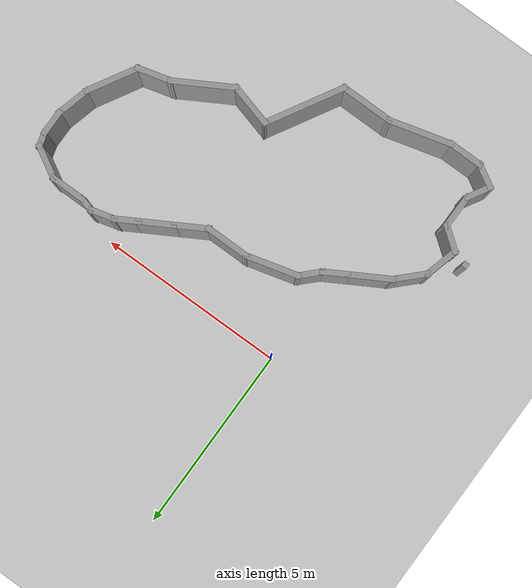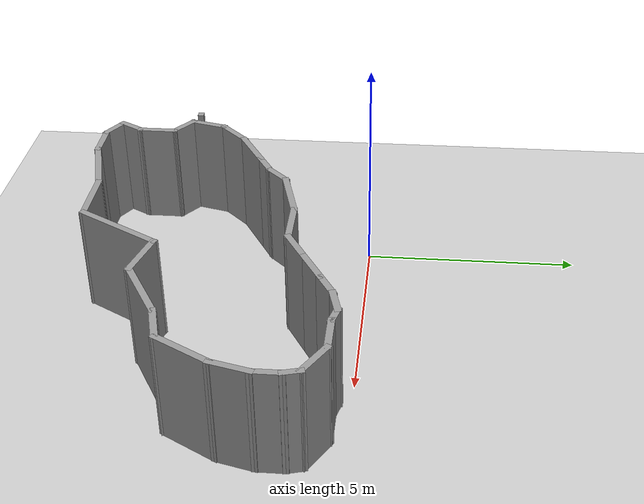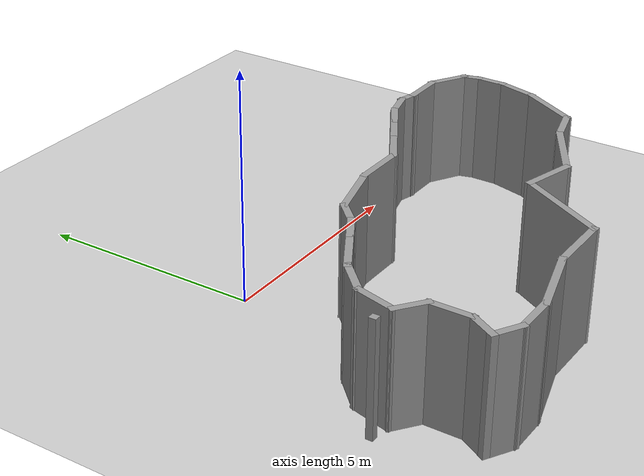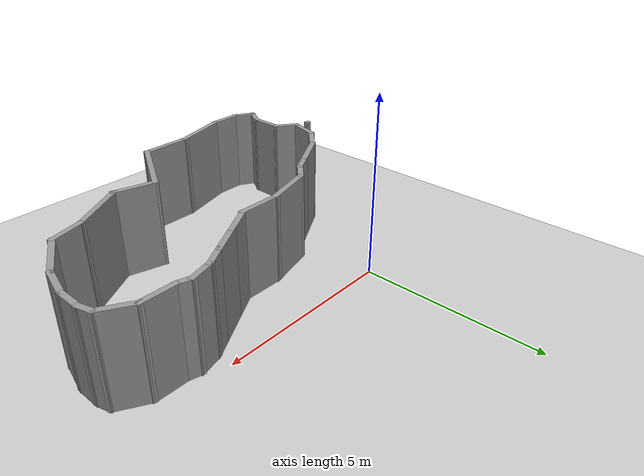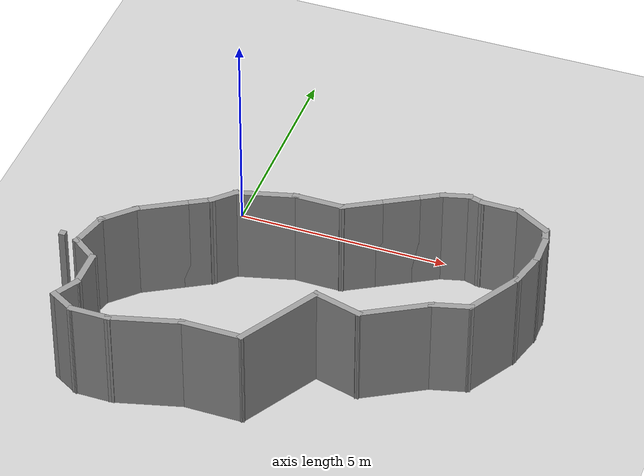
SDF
<sdf version="1.7">
 <world name="default">
  <model name="ground_plane">
   <static>1</static>
   <link name="link">
    <collision name="collision">
     <geometry><plane><normal>0 0 1</normal><size>100 100</size></plane></geometry>
     <surface>
      <contact><collide_bitmask>65535</collide_bitmask></contact>
      <friction><ode><mu>100</mu><mu2>50</mu2></ode></friction>
     </surface>
    </collision>
    <visual name="visual">
     <cast_shadows>0</cast_shadows>
     <geometry><plane><normal>0 0 1</normal><size>100 100</size></plane></geometry>
     <material>
      <script><uri>file://media/materials/scripts/gazebo.material</uri><name>Gazebo/Grey</name></script>
     </material>
    </visual>
   </link>
  </model>
  <model name="inside_map2">
   <pose>2.56691 -3.40179 0 0 -0 0</pose>
   <link name="Wall_116">
    <collision name="Wall_116_Collision">
     <geometry><box><size>0.15 0.15 2.5</size></box></geometry>
     <pose>0 0 1.25 0 -0 0</pose>
    </collision>
    <visual name="Wall_116_Visual">
     <pose>0 0 1.25 0 -0 0</pose>
     <geometry><box><size>0.15 0.15 2.5</size></box></geometry>
     <material>
      <script><uri>file://media/materials/scripts/gazebo.material</uri><name>Gazebo/Grey</name></script>
      <ambient>1 1 1 1</ambient>
     </material>
     <meta><layer>0</layer></meta>
    </visual>
    <pose>-5.0604 -1.1193 0 0 -0 0</pose>
   </link>
   <link name="Wall_118">
    <collision name="Wall_118_Collision">
     <geometry><box><size>1 0.15 2.5</size></box></geometry>
     <pose>0 0 1.25 0 -0 0</pose>
    </collision>
    <visual name="Wall_118_Visual">
     <pose>0 0 1.25 0 -0 0</pose>
     <geometry><box><size>1 0.15 2.5</size></box></geometry>
     <material>
      <script><uri>file://media/materials/scripts/gazebo.material</uri><name>Gazebo/Grey</name></script>
      <ambient>1 1 1 1</ambient>
     </material>
     <meta><layer>0</layer></meta>
    </visual>
    <pose>-4.5542 -0.827963 0 0 -0 1.309</pose>
   </link>
   <link name="Wall_119">
    <collision name="Wall_119_Collision">
     <geometry><box><size>1 0.15 2.5</size></box></geometry>
     <pose>0 0 1.25 0 -0 0</pose>
    </collision>
    <visual name="Wall_119_Visual">
     <pose>0 0 1.25 0 -0 0</pose>
     <geometry><box><size>1 0.15 2.5</size></box></geometry>
     <material>
      <script><uri>file://media/materials/scripts/gazebo.material</uri><name>Gazebo/Grey</name></script>
      <ambient>1 1 1 1</ambient>
     </material>
     <meta><layer>0</layer></meta>
    </visual>
    <pose>-4.14368 -0.116925 0 0 -0 0.785398</pose>
   </link>
   <link name="Wall_120">
    <collision name="Wall_120_Collision">
     <geometry><box><size>1.25 0.15 2.5</size></box></geometry>
     <pose>0 0 1.25 0 -0 0</pose>
    </collision>
    <visual name="Wall_120_Visual">
     <pose>0 0 1.25 0 -0 0</pose>
     <geometry><box><size>1.25 0.15 2.5</size></box></geometry>
     <material>
      <script><uri>file://media/materials/scripts/gazebo.material</uri><name>Gazebo/Grey</name></script>
      <ambient>1 1 1 1</ambient>
     </material>
     <meta><layer>0</layer></meta>
    </visual>
    <pose>-3.36684 0.458596 0 0 -0 0.523599</pose>
   </link>
   <link name="Wall_121">
    <collision name="Wall_121_Collision">
     <geometry><box><size>0.75 0.15 2.5</size></box></geometry>
     <pose>0 0 1.25 0 -0 0</pose>
    </collision>
    <visual name="Wall_121_Visual">
     <pose>0 0 1.25 0 -0 0</pose>
     <geometry><box><size>0.75 0.15 2.5</size></box></geometry>
     <material>
      <script><uri>file://media/materials/scripts/gazebo.material</uri><name>Gazebo/Grey</name></script>
      <ambient>1 1 1 1</ambient>
     </material>
     <meta><layer>0</layer></meta>
    </visual>
    <pose>-2.63072 0.883596 0 0 -0 0.523599</pose>
   </link>
   <link name="Wall_122">
    <collision name="Wall_122_Collision">
     <geometry><box><size>0.75 0.15 2.5</size></box></geometry>
     <pose>0 0 1.25 0 -0 0</pose>
    </collision>
    <visual name="Wall_122_Visual">
     <pose>0 0 1.25 0 -0 0</pose>
     <geometry><box><size>0.75 0.15 2.5</size></box></geometry>
     <material>
      <script><uri>file://media/materials/scripts/gazebo.material</uri><name>Gazebo/Grey</name></script>
      <ambient>1 1 1 1</ambient>
     </material>
     <meta><layer>0</layer></meta>
    </visual>
    <pose>-2.15878 1.24573 0 0 -0 0.785398</pose>
   </link>
   <link name="Wall_123">
    <collision name="Wall_123_Collision">
     <geometry><box><size>1.5 0.15 2.5</size></box></geometry>
     <pose>0 0 1.25 0 -0 0</pose>
    </collision>
    <visual name="Wall_123_Visual">
     <pose>0 0 1.25 0 -0 0</pose>
     <geometry><box><size>1.5 0.15 2.5</size></box></geometry>
     <material>
      <script><uri>file://media/materials/scripts/gazebo.material</uri><name>Gazebo/Grey</name></script>
      <ambient>1 1 1 1</ambient>
     </material>
     <meta><layer>0</layer></meta>
    </visual>
    <pose>-1.29465 1.63256 0 0 -0 0.261799</pose>
   </link>
   <link name="Wall_124">
    <collision name="Wall_124_Collision">
     <geometry><box><size>1.25 0.15 2.5</size></box></geometry>
     <pose>0 0 1.25 0 -0 0</pose>
    </collision>
    <visual name="Wall_124_Visual">
     <pose>0 0 1.25 0 -0 0</pose>
     <geometry><box><size>1.25 0.15 2.5</size></box></geometry>
     <material>
      <script><uri>file://media/materials/scripts/gazebo.material</uri><name>Gazebo/Grey</name></script>
      <ambient>1 1 1 1</ambient>
     </material>
     <meta><layer>0</layer></meta>
    </visual>
    <pose>-0.092651 1.80727 0 0 -0 0</pose>
   </link>
   <link name="Wall_125">
    <collision name="Wall_125_Collision">
     <geometry><box><size>1 0.15 2.5</size></box></geometry>
     <pose>0 0 1.25 0 -0 0</pose>
    </collision>
    <visual name="Wall_125_Visual">
     <pose>0 0 1.25 0 -0 0</pose>
     <geometry><box><size>1 0.15 2.5</size></box></geometry>
     <material>
      <script><uri>file://media/materials/scripts/gazebo.material</uri><name>Gazebo/Grey</name></script>
      <ambient>1 1 1 1</ambient>
     </material>
     <meta><layer>0</layer></meta>
    </visual>
    <pose>0.82541 2.01977 0 0 -0 0.523599</pose>
   </link>
   <link name="Wall_126">
    <collision name="Wall_126_Collision">
     <geometry><box><size>1 0.15 2.5</size></box></geometry>
     <pose>0 0 1.25 0 -0 0</pose>
    </collision>
    <visual name="Wall_126_Visual">
     <pose>0 0 1.25 0 -0 0</pose>
     <geometry><box><size>1 0.15 2.5</size></box></geometry>
     <material>
      <script><uri>file://media/materials/scripts/gazebo.material</uri><name>Gazebo/Grey</name></script>
      <ambient>1 1 1 1</ambient>
     </material>
     <meta><layer>0</layer></meta>
    </visual>
    <pose>1.56153 2.44477 0 0 -0 0.523599</pose>
   </link>
   <link name="Wall_127">
    <collision name="Wall_127_Collision">
     <geometry><box><size>0.75 0.15 2.5</size></box></geometry>
     <pose>0 0 1.25 0 -0 0</pose>
    </collision>
    <visual name="Wall_127_Visual">
     <pose>0 0 1.25 0 -0 0</pose>
     <geometry><box><size>0.75 0.15 2.5</size></box></geometry>
     <material>
      <script><uri>file://media/materials/scripts/gazebo.material</uri><name>Gazebo/Grey</name></script>
      <ambient>1 1 1 1</ambient>
     </material>
     <meta><layer>0</layer></meta>
    </visual>
    <pose>2.1894 2.80727 0 0 -0 0.523599</pose>
   </link>
   <link name="Wall_128">
    <collision name="Wall_128_Collision">
     <geometry><box><size>0.75 0.15 2.5</size></box></geometry>
     <pose>0 0 1.25 0 -0 0</pose>
    </collision>
    <visual name="Wall_128_Visual">
     <pose>0 0 1.25 0 -0 0</pose>
     <geometry><box><size>0.75 0.15 2.5</size></box></geometry>
     <material>
      <script><uri>file://media/materials/scripts/gazebo.material</uri><name>Gazebo/Grey</name></script>
      <ambient>1 1 1 1</ambient>
     </material>
     <meta><layer>0</layer></meta>
    </visual>
    <pose>2.73899 3.03491 0 0 -0 0.261799</pose>
   </link>
   <link name="Wall_129">
    <collision name="Wall_129_Collision">
     <geometry><box><size>0.5 0.15 2.5</size></box></geometry>
     <pose>0 0 1.25 0 -0 0</pose>
    </collision>
    <visual name="Wall_129_Visual">
     <pose>0 0 1.25 0 -0 0</pose>
     <geometry><box><size>0.5 0.15 2.5</size></box></geometry>
     <material>
      <script><uri>file://media/materials/scripts/gazebo.material</uri><name>Gazebo/Grey</name></script>
      <ambient>1 1 1 1</ambient>
     </material>
     <meta><layer>0</layer></meta>
    </visual>
    <pose>3.1978 3.06726 0 0 -0 -0.261799</pose>
   </link>
   <link name="Wall_130">
    <collision name="Wall_130_Collision">
     <geometry><box><size>1 0.15 2.5</size></box></geometry>
     <pose>0 0 1.25 0 -0 0</pose>
    </collision>
    <visual name="Wall_130_Visual">
     <pose>0 0 1.25 0 -0 0</pose>
     <geometry><box><size>1 0.15 2.5</size></box></geometry>
     <material>
      <script><uri>file://media/materials/scripts/gazebo.material</uri><name>Gazebo/Grey</name></script>
      <ambient>1 1 1 1</ambient>
     </material>
     <meta><layer>0</layer></meta>
    </visual>
    <pose>3.79184 3.02197 0 0 -0 0</pose>
   </link>
   <link name="Wall_131">
    <collision name="Wall_131_Collision">
     <geometry><box><size>1 0.15 2.5</size></box></geometry>
     <pose>0 0 1.25 0 -0 0</pose>
    </collision>
    <visual name="Wall_131_Visual">
     <pose>0 0 1.25 0 -0 0</pose>
     <geometry><box><size>1 0.15 2.5</size></box></geometry>
     <material>
      <script><uri>file://media/materials/scripts/gazebo.material</uri><name>Gazebo/Grey</name></script>
      <ambient>1 1 1 1</ambient>
     </material>
     <meta><layer>0</layer></meta>
    </visual>
    <pose>4.5849 2.80947 0 0 -0 -0.523599</pose>
   </link>
   <link name="Wall_132">
    <collision name="Wall_132_Collision">
     <geometry><box><size>0.5 0.15 2.5</size></box></geometry>
     <pose>0 0 1.25 0 -0 0</pose>
    </collision>
    <visual name="Wall_132_Visual">
     <pose>0 0 1.25 0 -0 0</pose>
     <geometry><box><size>0.5 0.15 2.5</size></box></geometry>
     <material>
      <script><uri>file://media/materials/scripts/gazebo.material</uri><name>Gazebo/Grey</name></script>
      <ambient>1 1 1 1</ambient>
     </material>
     <meta><layer>0</layer></meta>
    </visual>
    <pose>4.99825 2.42793 0 0 -0 -1.309</pose>
   </link>
   <link name="Wall_133">
    <collision name="Wall_133_Collision">
     <geometry><box><size>0.75 0.15 2.5</size></box></geometry>
     <pose>0 0 1.25 0 -0 0</pose>
    </collision>
    <visual name="Wall_133_Visual">
     <pose>0 0 1.25 0 -0 0</pose>
     <geometry><box><size>0.75 0.15 2.5</size></box></geometry>
     <material>
      <script><uri>file://media/materials/scripts/gazebo.material</uri><name>Gazebo/Grey</name></script>
      <ambient>1 1 1 1</ambient>
     </material>
     <meta><layer>0</layer></meta>
    </visual>
    <pose>5.04354 1.9589 0 0 -0 -1.5708</pose>
   </link>
   <link name="Wall_134">
    <collision name="Wall_134_Collision">
     <geometry><box><size>1 0.15 2.5</size></box></geometry>
     <pose>0 0 1.25 0 -0 0</pose>
    </collision>
    <visual name="Wall_134_Visual">
     <pose>0 0 1.25 0 -0 0</pose>
     <geometry><box><size>1 0.15 2.5</size></box></geometry>
     <material>
      <script><uri>file://media/materials/scripts/gazebo.material</uri><name>Gazebo/Grey</name></script>
      <ambient>1 1 1 1</ambient>
     </material>
     <meta><layer>0</layer></meta>
    </visual>
    <pose>4.93355 1.24838 0 0 -0 -1.8326</pose>
   </link>
   <link name="Wall_135">
    <collision name="Wall_135_Collision">
     <geometry><box><size>1.5 0.15 2.5</size></box></geometry>
     <pose>0 0 1.25 0 -0 0</pose>
    </collision>
    <visual name="Wall_135_Visual">
     <pose>0 0 1.25 0 -0 0</pose>
     <geometry><box><size>1.5 0.15 2.5</size></box></geometry>
     <material>
      <script><uri>file://media/materials/scripts/gazebo.material</uri><name>Gazebo/Grey</name></script>
      <ambient>1 1 1 1</ambient>
     </material>
     <meta><layer>0</layer></meta>
    </visual>
    <pose>4.48605 0.253292 0 0 -0 -2.0944</pose>
   </link>
   <link name="Wall_136">
    <collision name="Wall_136_Collision">
     <geometry><box><size>1 0.15 2.5</size></box></geometry>
     <pose>0 0 1.25 0 -0 0</pose>
    </collision>
    <visual name="Wall_136_Visual">
     <pose>0 0 1.25 0 -0 0</pose>
     <geometry><box><size>1 0.15 2.5</size></box></geometry>
     <material>
      <script><uri>file://media/materials/scripts/gazebo.material</uri><name>Gazebo/Grey</name></script>
      <ambient>1 1 1 1</ambient>
     </material>
     <meta><layer>0</layer></meta>
    </visual>
    <pose>3.73803 -0.441273 0 0 -0 -2.87979</pose>
   </link>
   <link name="Wall_137">
    <collision name="Wall_137_Collision">
     <geometry><box><size>1.75 0.15 2.5</size></box></geometry>
     <pose>0 0 1.25 0 -0 0</pose>
    </collision>
    <visual name="Wall_137_Visual">
     <pose>0 0 1.25 0 -0 0</pose>
     <geometry><box><size>1.75 0.15 2.5</size></box></geometry>
     <material>
      <script><uri>file://media/materials/scripts/gazebo.material</uri><name>Gazebo/Grey</name></script>
      <ambient>1 1 1 1</ambient>
     </material>
     <meta><layer>0</layer></meta>
    </visual>
    <pose>2.63469 -0.951271 0 0 -0 -2.61799</pose>
   </link>
   <link name="Wall_138">
    <collision name="Wall_138_Collision">
     <geometry><box><size>1.25 0.15 2.5</size></box></geometry>
     <pose>0 0 1.25 0 -0 0</pose>
    </collision>
    <visual name="Wall_138_Visual">
     <pose>0 0 1.25 0 -0 0</pose>
     <geometry><box><size>1.25 0.15 2.5</size></box></geometry>
     <material>
      <script><uri>file://media/materials/scripts/gazebo.material</uri><name>Gazebo/Grey</name></script>
      <ambient>1 1 1 1</ambient>
     </material>
     <meta><layer>0</layer></meta>
    </visual>
    <pose>1.41061 -1.20892 0 0 -0 2.87979</pose>
   </link>
   <link name="Wall_139">
    <collision name="Wall_139_Collision">
     <geometry><box><size>2.25 0.15 2.5</size></box></geometry>
     <pose>0 0 1.25 0 -0 0</pose>
    </collision>
    <visual name="Wall_139_Visual">
     <pose>0 0 1.25 0 -0 0</pose>
     <geometry><box><size>2.25 0.15 2.5</size></box></geometry>
     <material>
      <script><uri>file://media/materials/scripts/gazebo.material</uri><name>Gazebo/Grey</name></script>
      <ambient>1 1 1 1</ambient>
     </material>
     <meta><layer>0</layer></meta>
    </visual>
    <pose>0.354353 -1.9759 0 0 -0 -2.0944</pose>
   </link>
   <link name="Wall_140">
    <collision name="Wall_140_Collision">
     <geometry><box><size>1.5 0.15 2.5</size></box></geometry>
     <pose>0 0 1.25 0 -0 0</pose>
    </collision>
    <visual name="Wall_140_Visual">
     <pose>0 0 1.25 0 -0 0</pose>
     <geometry><box><size>1.5 0.15 2.5</size></box></geometry>
     <material>
      <script><uri>file://media/materials/scripts/gazebo.material</uri><name>Gazebo/Grey</name></script>
      <ambient>1 1 1 1</ambient>
     </material>
     <meta><layer>0</layer></meta>
    </visual>
    <pose>-0.845647 -2.88522 0 0 -0 3.14159</pose>
   </link>
   <link name="Wall_141">
    <collision name="Wall_141_Collision">
     <geometry><box><size>1.75 0.15 2.5</size></box></geometry>
     <pose>0 0 1.25 0 -0 0</pose>
    </collision>
    <visual name="Wall_141_Visual">
     <pose>0 0 1.25 0 -0 0</pose>
     <geometry><box><size>1.75 0.15 2.5</size></box></geometry>
     <material>
      <script><uri>file://media/materials/scripts/gazebo.material</uri><name>Gazebo/Grey</name></script>
      <ambient>1 1 1 1</ambient>
     </material>
     <meta><layer>0</layer></meta>
    </visual>
    <pose>-2.29339 -3.09228 0 0 -0 -2.87979</pose>
   </link>
   <link name="Wall_142">
    <collision name="Wall_142_Collision">
     <geometry><box><size>1 0.15 2.5</size></box></geometry>
     <pose>0 0 1.25 0 -0 0</pose>
    </collision>
    <visual name="Wall_142_Visual">
     <pose>0 0 1.25 0 -0 0</pose>
     <geometry><box><size>1 0.15 2.5</size></box></geometry>
     <material>
      <script><uri>file://media/materials/scripts/gazebo.material</uri><name>Gazebo/Grey</name></script>
      <ambient>1 1 1 1</ambient>
     </material>
     <meta><layer>0</layer></meta>
    </visual>
    <pose>-3.49113 -3.29933 0 0 -0 3.14159</pose>
   </link>
   <link name="Wall_143">
    <collision name="Wall_143_Collision">
     <geometry><box><size>0.75 0.15 2.5</size></box></geometry>
     <pose>0 0 1.25 0 -0 0</pose>
    </collision>
    <visual name="Wall_143_Visual">
     <pose>0 0 1.25 0 -0 0</pose>
     <geometry><box><size>0.75 0.15 2.5</size></box></geometry>
     <material>
      <script><uri>file://media/materials/scripts/gazebo.material</uri><name>Gazebo/Grey</name></script>
      <ambient>1 1 1 1</ambient>
     </material>
     <meta><layer>0</layer></meta>
    </visual>
    <pose>-4.17594 -3.14933 0 0 -0 2.61799</pose>
   </link>
   <link name="Wall_144">
    <collision name="Wall_144_Collision">
     <geometry><box><size>0.75 0.15 2.5</size></box></geometry>
     <pose>0 0 1.25 0 -0 0</pose>
    </collision>
    <visual name="Wall_144_Visual">
     <pose>0 0 1.25 0 -0 0</pose>
     <geometry><box><size>0.75 0.15 2.5</size></box></geometry>
     <material>
      <script><uri>file://media/materials/scripts/gazebo.material</uri><name>Gazebo/Grey</name></script>
      <ambient>1 1 1 1</ambient>
     </material>
     <meta><layer>0</layer></meta>
    </visual>
    <pose>-4.28574 -2.73953 0 0 -0 1.0472</pose>
   </link>
   <link name="Wall_145">
    <collision name="Wall_145_Collision">
     <geometry><box><size>1 0.15 2.5</size></box></geometry>
     <pose>0 0 1.25 0 -0 0</pose>
    </collision>
    <visual name="Wall_145_Visual">
     <pose>0 0 1.25 0 -0 0</pose>
     <geometry><box><size>1 0.15 2.5</size></box></geometry>
     <material>
      <script><uri>file://media/materials/scripts/gazebo.material</uri><name>Gazebo/Grey</name></script>
      <ambient>1 1 1 1</ambient>
     </material>
     <meta><layer>0</layer></meta>
    </visual>
    <pose>-4.13574 -2.05472 0 0 -0 1.5708</pose>
   </link>
   <link name="Wall_146">
    <collision name="Wall_146_Collision">
     <geometry><box><size>0.807516 0.15 2.5</size></box></geometry>
     <pose>0 0 1.25 0 -0 0</pose>
    </collision>
    <visual name="Wall_146_Visual">
     <pose>0 0 1.25 0 -0 0</pose>
     <geometry><box><size>0.807516 0.15 2.5</size></box></geometry>
     <material>
      <script><uri>file://media/materials/scripts/gazebo.material</uri><name>Gazebo/Grey</name></script>
      <ambient>1 1 1 1</ambient>
     </material>
     <meta><layer>0</layer></meta>
    </visual>
    <pose>-4.39997 -1.4341 0 0 -0 2.5043</pose>
   </link>
   <static>1</static>
  </model>
 </world>
</sdf>
